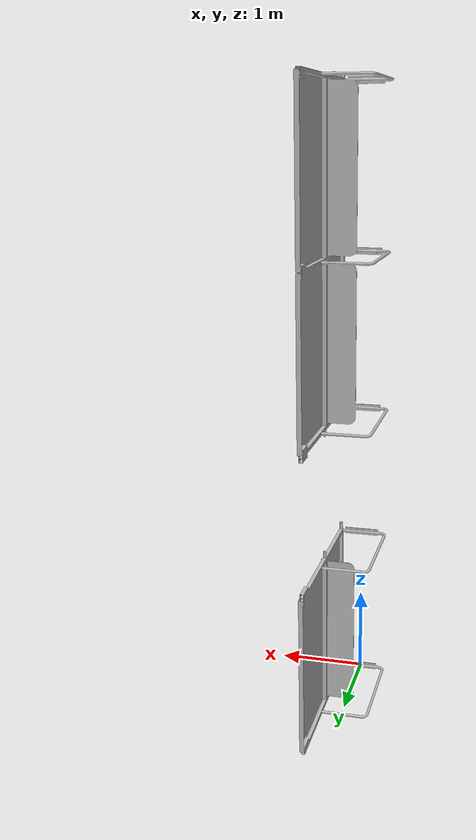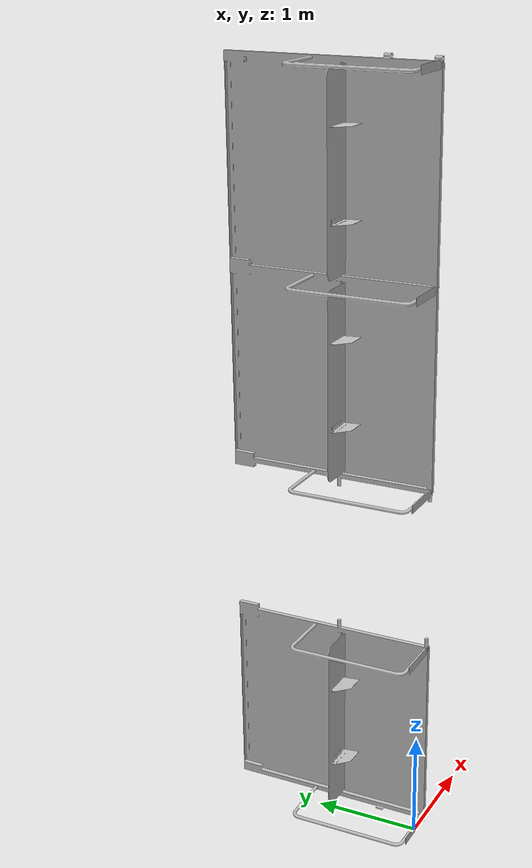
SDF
<?xml version="1.0" encoding="utf-8"?>
<sdf version="1.5">
  <model name="EndWall">
    <pose>0 0 0 0 0 0</pose>
    <plugin name="clock" filename="libgz_clock.so">
      <topic>/gazebo/frc/time</topic>
    </plugin>
    <link name="Body">
      <gravity>1</gravity>
      <self_collide>0</self_collide>
      <pose>0.224611814761393 0.926374333821322 3.74960102918076 0 0 0</pose>
      <must_be_base_link>1</must_be_base_link>
      <velocity_decay>
        <linear>0</linear>
        <angular>0</angular>
      </velocity_decay>
      <inertial>
        <mass>225.437696699107</mass>
        <pose>0 0 0 0 0 0</pose>
        <inertia>
          <ixx>1160.40561444238</ixx>
          <ixy>2.67319930400095</ixy>
          <ixz>1.06410659565769</ixz>
          <iyy>1106.66477080876</iyy>
          <iyz>1.47853910350282</iyz>
          <izz>58.7597520716012</izz>
        </inertia>
      </inertial>
      <collision name="Body_collision">
        <pose>0.0532006852386071 -0.926374333821322 -0.219001029180756 0 0 0</pose>
        <geometry>
          <mesh>
            <scale>1 1 1</scale>
            <uri>model://EndWall/meshes/Body_col.STL</uri>
          </mesh>
        </geometry>
        <surface>
          <contact>
            <ode />
          </contact>
          <friction>
            <ode>
              <mu>0</mu>
              <mu2>0</mu2>
            </ode>
          </friction>
        </surface>
      </collision>
      <visual name="Body_visual">
        <pose>0.0532006852386071 -0.926374333821322 -0.219001029180756 0 0 0</pose>
        <material>
          <ambient>0.752941176470588 0.752941176470588 0.752941176470588 1</ambient>
          <diffuse>0.752941176470588 0.752941176470588 0.752941176470588 1</diffuse>
        </material>
        <geometry>
          <mesh>
            <scale>1 1 1</scale>
            <uri>model://EndWall/meshes/Body.STL</uri>
          </mesh>
        </geometry>
      </visual>
    </link>
  </model>
</sdf>
